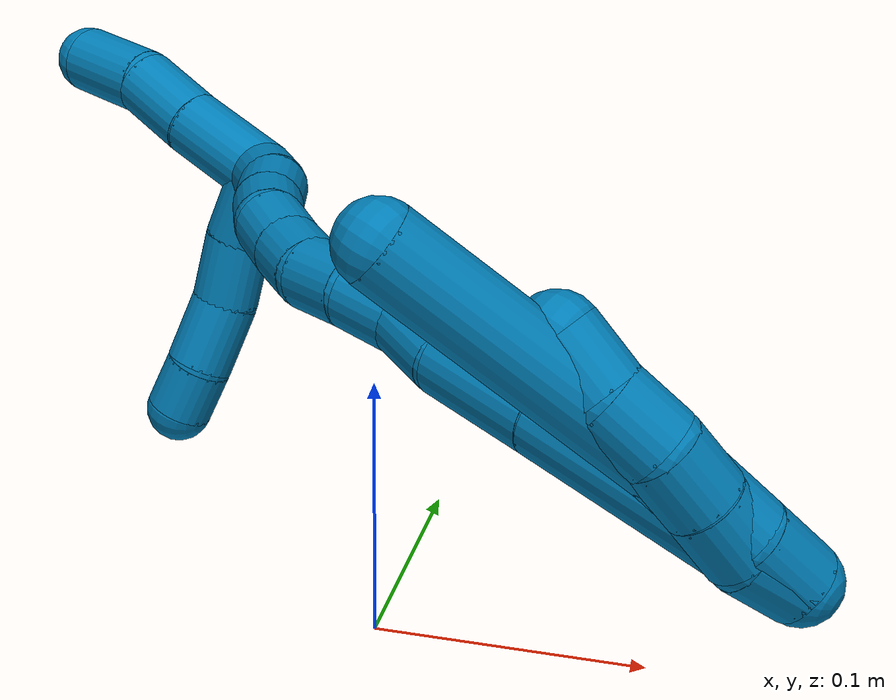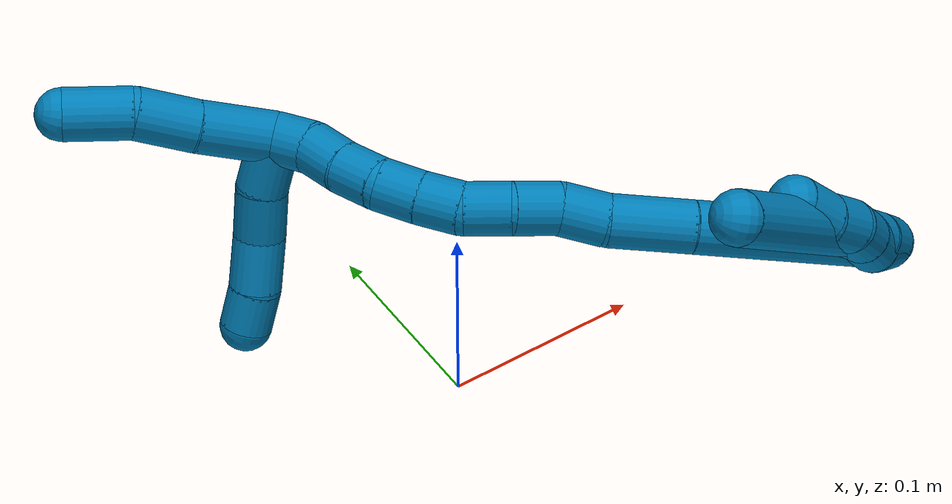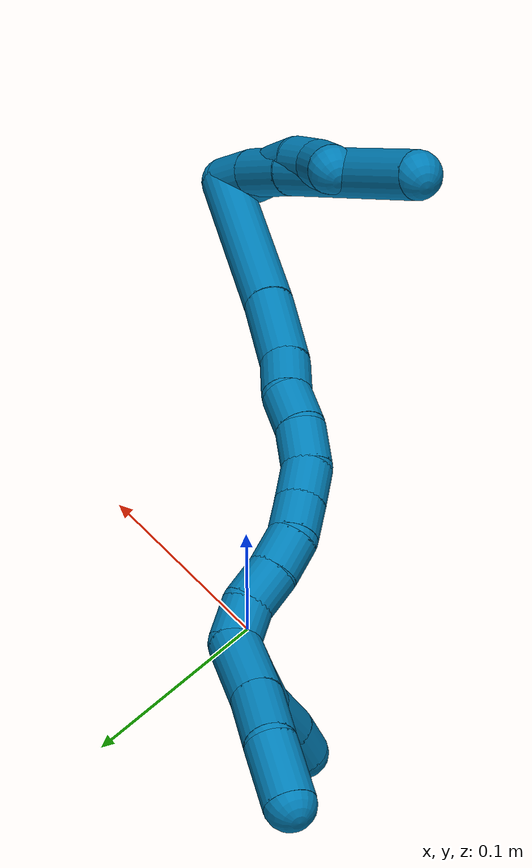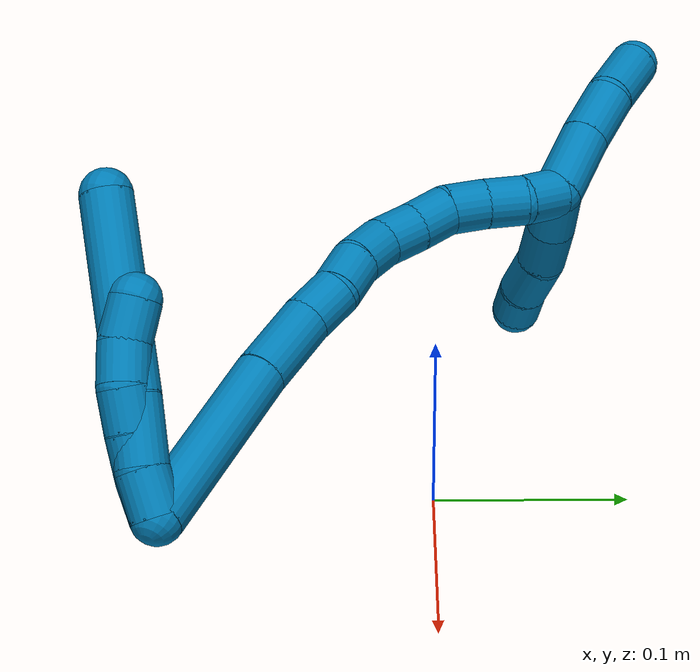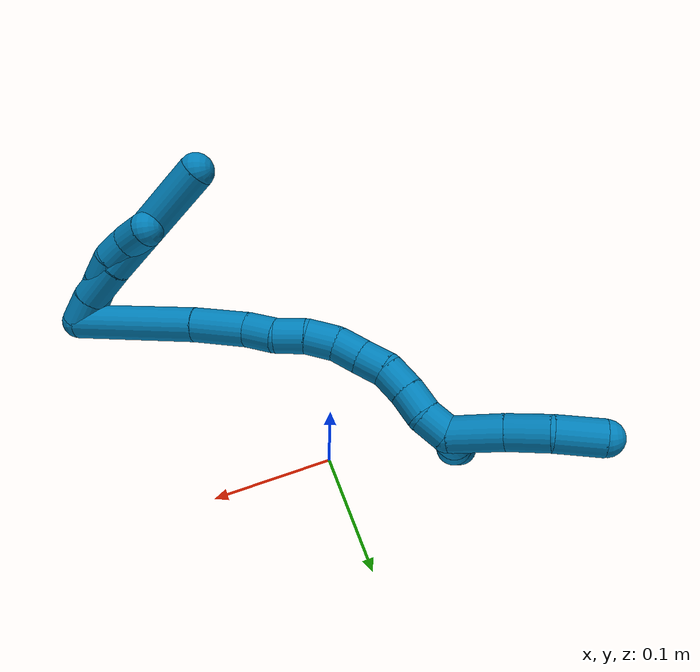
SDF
<sdf version="1.7">
 <world name="default">
  <model name="9">
   <static>0</static>
   <link name="9">
    <collision name="collision-cylinder-e_1_2_8">
     <pose>0.006383 -0.004992 0.007567 0.583192 0.613483 0.189569</pose>
     <geometry><cylinder><radius>0.0125</radius><length>0.022175</length></cylinder></geometry>
     <surface>
      <friction><ode><mu>1.16</mu><mu2>1.16</mu2><slip1>0</slip1><slip2>0</slip2></ode></friction>
      <contact><ode><kp>1e+06</kp><kd>1</kd><max_vel>0</max_vel><min_depth>0.001</min_depth></ode></contact>
     </surface>
    </collision>
    <visual name="visual-cylinder-e_1_2_8">
     <pose>0.006383 -0.004992 0.007567 0.583192 0.613483 0.189569</pose>
     <geometry><cylinder><radius>0.0125</radius><length>0.022175</length></cylinder></geometry>
     <material><ambient>0 0.490196 0.709804 1</ambient></material>
    </visual>
    <collision name="collision-cylinder-e_2_8_9">
     <pose>0.02064 -0.015294 0.028456 0.37921 0.5021 0.098356</pose>
     <geometry><cylinder><radius>0.0125</radius><length>0.032719</length></cylinder></geometry>
     <surface>
      <friction><ode><mu>1.16</mu><mu2>1.16</mu2><slip1>0</slip1><slip2>0</slip2></ode></friction>
      <contact><ode><kp>1e+06</kp><kd>1</kd><max_vel>0</max_vel><min_depth>0.001</min_depth></ode></contact>
     </surface>
    </collision>
    <visual name="visual-cylinder-e_2_8_9">
     <pose>0.02064 -0.015294 0.028456 0.37921 0.5021 0.098356</pose>
     <geometry><cylinder><radius>0.0125</radius><length>0.032719</length></cylinder></geometry>
     <material><ambient>0 0.490196 0.709804 1</ambient></material>
    </visual>
    <collision name="collision-cylinder-e_3_9_6">
     <pose>0.048416 -0.038534 0.081067 0.428161 0.431827 0.095299</pose>
     <geometry><cylinder><radius>0.0125</radius><length>0.095106</length></cylinder></geometry>
     <surface>
      <friction><ode><mu>1.16</mu><mu2>1.16</mu2><slip1>0</slip1><slip2>0</slip2></ode></friction>
      <contact><ode><kp>1e+06</kp><kd>1</kd><max_vel>0</max_vel><min_depth>0.001</min_depth></ode></contact>
     </surface>
    </collision>
    <visual name="visual-cylinder-e_3_9_6">
     <pose>0.048416 -0.038534 0.081067 0.428161 0.431827 0.095299</pose>
     <geometry><cylinder><radius>0.0125</radius><length>0.095106</length></cylinder></geometry>
     <material><ambient>0 0.490196 0.709804 1</ambient></material>
    </visual>
    <collision name="collision-cylinder-e_1_2_10">
     <pose>0.004242 -0.005418 0.007257 0.641294 0.438038 0.147579</pose>
     <geometry><cylinder><radius>0.0125</radius><length>0.02</length></cylinder></geometry>
     <surface>
      <friction><ode><mu>1.16</mu><mu2>1.16</mu2><slip1>0</slip1><slip2>0</slip2></ode></friction>
      <contact><ode><kp>1e+06</kp><kd>1</kd><max_vel>0</max_vel><min_depth>0.001</min_depth></ode></contact>
     </surface>
    </collision>
    <visual name="visual-cylinder-e_1_2_10">
     <pose>0.004242 -0.005418 0.007257 0.641294 0.438038 0.147579</pose>
     <geometry><cylinder><radius>0.0125</radius><length>0.02</length></cylinder></geometry>
     <material><ambient>0 0.490196 0.709804 1</ambient></material>
    </visual>
    <collision name="collision-cylinder-e_2_10_11">
     <pose>0.015087 -0.01426 0.021196 0.473594 0.72138 0.181551</pose>
     <geometry><cylinder><radius>0.0125</radius><length>0.02</length></cylinder></geometry>
     <surface>
      <friction><ode><mu>1.16</mu><mu2>1.16</mu2><slip1>0</slip1><slip2>0</slip2></ode></friction>
      <contact><ode><kp>1e+06</kp><kd>1</kd><max_vel>0</max_vel><min_depth>0.001</min_depth></ode></contact>
     </surface>
    </collision>
    <visual name="visual-cylinder-e_2_10_11">
     <pose>0.015087 -0.01426 0.021196 0.473594 0.72138 0.181551</pose>
     <geometry><cylinder><radius>0.0125</radius><length>0.02</length></cylinder></geometry>
     <material><ambient>0 0.490196 0.709804 1</ambient></material>
    </visual>
    <collision name="collision-cylinder-e_3_11_12">
     <pose>0.028 -0.020844 0.034965 0.419364 0.682635 0.150902</pose>
     <geometry><cylinder><radius>0.0125</radius><length>0.02</length></cylinder></geometry>
     <surface>
      <friction><ode><mu>1.16</mu><mu2>1.16</mu2><slip1>0</slip1><slip2>0</slip2></ode></friction>
      <contact><ode><kp>1e+06</kp><kd>1</kd><max_vel>0</max_vel><min_depth>0.001</min_depth></ode></contact>
     </surface>
    </collision>
    <visual name="visual-cylinder-e_3_11_12">
     <pose>0.028 -0.020844 0.034965 0.419364 0.682635 0.150902</pose>
     <geometry><cylinder><radius>0.0125</radius><length>0.02</length></cylinder></geometry>
     <material><ambient>0 0.490196 0.709804 1</ambient></material>
    </visual>
    <collision name="collision-cylinder-e_4_12_13">
     <pose>0.038381 -0.026382 0.05087 0.263479 0.419429 0.056392</pose>
     <geometry><cylinder><radius>0.0125</radius><length>0.02</length></cylinder></geometry>
     <surface>
      <friction><ode><mu>1.16</mu><mu2>1.16</mu2><slip1>0</slip1><slip2>0</slip2></ode></friction>
      <contact><ode><kp>1e+06</kp><kd>1</kd><max_vel>0</max_vel><min_depth>0.001</min_depth></ode></contact>
     </surface>
    </collision>
    <visual name="visual-cylinder-e_4_12_13">
     <pose>0.038381 -0.026382 0.05087 0.263479 0.419429 0.056392</pose>
     <geometry><cylinder><radius>0.0125</radius><length>0.02</length></cylinder></geometry>
     <material><ambient>0 0.490196 0.709804 1</ambient></material>
    </visual>
    <collision name="collision-cylinder-e_5_13_5">
     <pose>0.046755 -0.028673 0.068715 -0.009746 0.444706 -0.002204</pose>
     <geometry><cylinder><radius>0.0125</radius><length>0.02</length></cylinder></geometry>
     <surface>
      <friction><ode><mu>1.16</mu><mu2>1.16</mu2><slip1>0</slip1><slip2>0</slip2></ode></friction>
      <contact><ode><kp>1e+06</kp><kd>1</kd><max_vel>0</max_vel><min_depth>0.001</min_depth></ode></contact>
     </surface>
    </collision>
    <visual name="visual-cylinder-e_5_13_5">
     <pose>0.046755 -0.028673 0.068715 -0.009746 0.444706 -0.002204</pose>
     <geometry><cylinder><radius>0.0125</radius><length>0.02</length></cylinder></geometry>
     <material><ambient>0 0.490196 0.709804 1</ambient></material>
    </visual>
    <collision name="collision-cylinder-e_1_2_14">
     <pose>-0.00608 0.005064 0.045615 -0.110557 -0.131715 0.007299</pose>
     <geometry><cylinder><radius>0.0125</radius><length>0.092591</length></cylinder></geometry>
     <surface>
      <friction><ode><mu>1.16</mu><mu2>1.16</mu2><slip1>0</slip1><slip2>0</slip2></ode></friction>
      <contact><ode><kp>1e+06</kp><kd>1</kd><max_vel>0</max_vel><min_depth>0.001</min_depth></ode></contact>
     </surface>
    </collision>
    <visual name="visual-cylinder-e_1_2_14">
     <pose>-0.00608 0.005064 0.045615 -0.110557 -0.131715 0.007299</pose>
     <geometry><cylinder><radius>0.0125</radius><length>0.092591</length></cylinder></geometry>
     <material><ambient>0 0.490196 0.709804 1</ambient></material>
    </visual>
    <collision name="collision-cylinder-e_2_14_15">
     <pose>-0.015711 0.013105 0.110682 -0.151895 -0.178512 0.01362</pose>
     <geometry><cylinder><radius>0.0125</radius><length>0.039994</length></cylinder></geometry>
     <surface>
      <friction><ode><mu>1.16</mu><mu2>1.16</mu2><slip1>0</slip1><slip2>0</slip2></ode></friction>
      <contact><ode><kp>1e+06</kp><kd>1</kd><max_vel>0</max_vel><min_depth>0.001</min_depth></ode></contact>
     </surface>
    </collision>
    <visual name="visual-cylinder-e_2_14_15">
     <pose>-0.015711 0.013105 0.110682 -0.151895 -0.178512 0.01362</pose>
     <geometry><cylinder><radius>0.0125</radius><length>0.039994</length></cylinder></geometry>
     <material><ambient>0 0.490196 0.709804 1</ambient></material>
    </visual>
    <collision name="collision-cylinder-e_3_15_16">
     <pose>-0.020461 0.019604 0.140619 -0.323979 -0.108028 0.017671</pose>
     <geometry><cylinder><radius>0.0125</radius><length>0.02225</length></cylinder></geometry>
     <surface>
      <friction><ode><mu>1.16</mu><mu2>1.16</mu2><slip1>0</slip1><slip2>0</slip2></ode></friction>
      <contact><ode><kp>1e+06</kp><kd>1</kd><max_vel>0</max_vel><min_depth>0.001</min_depth></ode></contact>
     </surface>
    </collision>
    <visual name="visual-cylinder-e_3_15_16">
     <pose>-0.020461 0.019604 0.140619 -0.323979 -0.108028 0.017671</pose>
     <geometry><cylinder><radius>0.0125</radius><length>0.02225</length></cylinder></geometry>
     <material><ambient>0 0.490196 0.709804 1</ambient></material>
    </visual>
    <collision name="collision-cylinder-e_4_16_17">
     <pose>-0.023645 0.023701 0.161799 -0.05385 -0.183192 0.004947</pose>
     <geometry><cylinder><radius>0.0125</radius><length>0.021787</length></cylinder></geometry>
     <surface>
      <friction><ode><mu>1.16</mu><mu2>1.16</mu2><slip1>0</slip1><slip2>0</slip2></ode></friction>
      <contact><ode><kp>1e+06</kp><kd>1</kd><max_vel>0</max_vel><min_depth>0.001</min_depth></ode></contact>
     </surface>
    </collision>
    <visual name="visual-cylinder-e_4_16_17">
     <pose>-0.023645 0.023701 0.161799 -0.05385 -0.183192 0.004947</pose>
     <geometry><cylinder><radius>0.0125</radius><length>0.021787</length></cylinder></geometry>
     <material><ambient>0 0.490196 0.709804 1</ambient></material>
    </visual>
    <collision name="collision-cylinder-e_5_17_18">
     <pose>-0.029568 0.02644 0.18255 -0.211799 -0.365708 0.039308</pose>
     <geometry><cylinder><radius>0.0125</radius><length>0.022026</length></cylinder></geometry>
     <surface>
      <friction><ode><mu>1.16</mu><mu2>1.16</mu2><slip1>0</slip1><slip2>0</slip2></ode></friction>
      <contact><ode><kp>1e+06</kp><kd>1</kd><max_vel>0</max_vel><min_depth>0.001</min_depth></ode></contact>
     </surface>
    </collision>
    <visual name="visual-cylinder-e_5_17_18">
     <pose>-0.029568 0.02644 0.18255 -0.211799 -0.365708 0.039308</pose>
     <geometry><cylinder><radius>0.0125</radius><length>0.022026</length></cylinder></geometry>
     <material><ambient>0 0.490196 0.709804 1</ambient></material>
    </visual>
    <collision name="collision-cylinder-e_6_18_19">
     <pose>-0.036487 0.033612 0.200995 -0.538328 -0.296052 0.082224</pose>
     <geometry><cylinder><radius>0.0125</radius><length>0.020434</length></cylinder></geometry>
     <surface>
      <friction><ode><mu>1.16</mu><mu2>1.16</mu2><slip1>0</slip1><slip2>0</slip2></ode></friction>
      <contact><ode><kp>1e+06</kp><kd>1</kd><max_vel>0</max_vel><min_depth>0.001</min_depth></ode></contact>
     </surface>
    </collision>
    <visual name="visual-cylinder-e_6_18_19">
     <pose>-0.036487 0.033612 0.200995 -0.538328 -0.296052 0.082224</pose>
     <geometry><cylinder><radius>0.0125</radius><length>0.020434</length></cylinder></geometry>
     <material><ambient>0 0.490196 0.709804 1</ambient></material>
    </visual>
    <collision name="collision-cylinder-e_7_19_20">
     <pose>-0.041637 0.043722 0.217753 -0.547332 -0.217876 0.061383</pose>
     <geometry><cylinder><radius>0.0125</radius><length>0.020072</length></cylinder></geometry>
     <surface>
      <friction><ode><mu>1.16</mu><mu2>1.16</mu2><slip1>0</slip1><slip2>0</slip2></ode></friction>
      <contact><ode><kp>1e+06</kp><kd>1</kd><max_vel>0</max_vel><min_depth>0.001</min_depth></ode></contact>
     </surface>
    </collision>
    <visual name="visual-cylinder-e_7_19_20">
     <pose>-0.041637 0.043722 0.217753 -0.547332 -0.217876 0.061383</pose>
     <geometry><cylinder><radius>0.0125</radius><length>0.020072</length></cylinder></geometry>
     <material><ambient>0 0.490196 0.709804 1</ambient></material>
    </visual>
    <collision name="collision-cylinder-e_8_20_21">
     <pose>-0.047234 0.056129 0.232296 -0.869176 -0.343957 0.160905</pose>
     <geometry><cylinder><radius>0.0125</radius><length>0.020327</length></cylinder></geometry>
     <surface>
      <friction><ode><mu>1.16</mu><mu2>1.16</mu2><slip1>0</slip1><slip2>0</slip2></ode></friction>
      <contact><ode><kp>1e+06</kp><kd>1</kd><max_vel>0</max_vel><min_depth>0.001</min_depth></ode></contact>
     </surface>
    </collision>
    <visual name="visual-cylinder-e_8_20_21">
     <pose>-0.047234 0.056129 0.232296 -0.869176 -0.343957 0.160905</pose>
     <geometry><cylinder><radius>0.0125</radius><length>0.020327</length></cylinder></geometry>
     <material><ambient>0 0.490196 0.709804 1</ambient></material>
    </visual>
    <collision name="collision-cylinder-e_9_21_22">
     <pose>-0.053725 0.07167 0.243744 -1.00119 -0.303658 0.167022</pose>
     <geometry><cylinder><radius>0.0125</radius><length>0.02049</length></cylinder></geometry>
     <surface>
      <friction><ode><mu>1.16</mu><mu2>1.16</mu2><slip1>0</slip1><slip2>0</slip2></ode></friction>
      <contact><ode><kp>1e+06</kp><kd>1</kd><max_vel>0</max_vel><min_depth>0.001</min_depth></ode></contact>
     </surface>
    </collision>
    <visual name="visual-cylinder-e_9_21_22">
     <pose>-0.053725 0.07167 0.243744 -1.00119 -0.303658 0.167022</pose>
     <geometry><cylinder><radius>0.0125</radius><length>0.02049</length></cylinder></geometry>
     <material><ambient>0 0.490196 0.709804 1</ambient></material>
    </visual>
    <collision name="collision-cylinder-e_10_22_1">
     <pose>-0.060855 0.085827 0.255992 -0.704133 -0.418179 0.155591</pose>
     <geometry><cylinder><radius>0.0125</radius><length>0.020029</length></cylinder></geometry>
     <surface>
      <friction><ode><mu>1.16</mu><mu2>1.16</mu2><slip1>0</slip1><slip2>0</slip2></ode></friction>
      <contact><ode><kp>1e+06</kp><kd>1</kd><max_vel>0</max_vel><min_depth>0.001</min_depth></ode></contact>
     </surface>
    </collision>
    <visual name="visual-cylinder-e_10_22_1">
     <pose>-0.060855 0.085827 0.255992 -0.704133 -0.418179 0.155591</pose>
     <geometry><cylinder><radius>0.0125</radius><length>0.020029</length></cylinder></geometry>
     <material><ambient>0 0.490196 0.709804 1</ambient></material>
    </visual>
    <collision name="collision-cylinder-e_1_1_23">
     <pose>-0.064933 0.093052 0.281789 -0.069008 -0.000609 2.1e-05</pose>
     <geometry><cylinder><radius>0.0125</radius><length>0.037734</length></cylinder></geometry>
     <surface>
      <friction><ode><mu>1.16</mu><mu2>1.16</mu2><slip1>0</slip1><slip2>0</slip2></ode></friction>
      <contact><ode><kp>1e+06</kp><kd>1</kd><max_vel>0</max_vel><min_depth>0.001</min_depth></ode></contact>
     </surface>
    </collision>
    <visual name="visual-cylinder-e_1_1_23">
     <pose>-0.064933 0.093052 0.281789 -0.069008 -0.000609 2.1e-05</pose>
     <geometry><cylinder><radius>0.0125</radius><length>0.037734</length></cylinder></geometry>
     <material><ambient>0 0.490196 0.709804 1</ambient></material>
    </visual>
    <collision name="collision-cylinder-e_2_23_24">
     <pose>-0.064811 0.096552 0.315259 -0.148965 0.009036 -0.000674</pose>
     <geometry><cylinder><radius>0.0125</radius><length>0.029626</length></cylinder></geometry>
     <surface>
      <friction><ode><mu>1.16</mu><mu2>1.16</mu2><slip1>0</slip1><slip2>0</slip2></ode></friction>
      <contact><ode><kp>1e+06</kp><kd>1</kd><max_vel>0</max_vel><min_depth>0.001</min_depth></ode></contact>
     </surface>
    </collision>
    <visual name="visual-cylinder-e_2_23_24">
     <pose>-0.064811 0.096552 0.315259 -0.148965 0.009036 -0.000674</pose>
     <geometry><cylinder><radius>0.0125</radius><length>0.029626</length></cylinder></geometry>
     <material><ambient>0 0.490196 0.709804 1</ambient></material>
    </visual>
    <collision name="collision-cylinder-e_3_24_4">
     <pose>-0.068756 0.10004 0.345657 -0.081748 -0.252639 0.010387</pose>
     <geometry><cylinder><radius>0.0125</radius><length>0.03264</length></cylinder></geometry>
     <surface>
      <friction><ode><mu>1.16</mu><mu2>1.16</mu2><slip1>0</slip1><slip2>0</slip2></ode></friction>
      <contact><ode><kp>1e+06</kp><kd>1</kd><max_vel>0</max_vel><min_depth>0.001</min_depth></ode></contact>
     </surface>
    </collision>
    <visual name="visual-cylinder-e_3_24_4">
     <pose>-0.068756 0.10004 0.345657 -0.081748 -0.252639 0.010387</pose>
     <geometry><cylinder><radius>0.0125</radius><length>0.03264</length></cylinder></geometry>
     <material><ambient>0 0.490196 0.709804 1</ambient></material>
    </visual>
    <collision name="collision-cylinder-e_1_1_25">
     <pose>-0.077994 0.087846 0.262874 1.59449 -1.28039 -1.30316</pose>
     <geometry><cylinder><radius>0.0125</radius><length>0.027286</length></cylinder></geometry>
     <surface>
      <friction><ode><mu>1.16</mu><mu2>1.16</mu2><slip1>0</slip1><slip2>0</slip2></ode></friction>
      <contact><ode><kp>1e+06</kp><kd>1</kd><max_vel>0</max_vel><min_depth>0.001</min_depth></ode></contact>
     </surface>
    </collision>
    <visual name="visual-cylinder-e_1_1_25">
     <pose>-0.077994 0.087846 0.262874 1.59449 -1.28039 -1.30316</pose>
     <geometry><cylinder><radius>0.0125</radius><length>0.027286</length></cylinder></geometry>
     <material><ambient>0 0.490196 0.709804 1</ambient></material>
    </visual>
    <collision name="collision-cylinder-e_2_25_26">
     <pose>-0.103004 0.079918 0.260409 2.1037 -1.19795 -1.74815</pose>
     <geometry><cylinder><radius>0.0125</radius><length>0.025638</length></cylinder></geometry>
     <surface>
      <friction><ode><mu>1.16</mu><mu2>1.16</mu2><slip1>0</slip1><slip2>0</slip2></ode></friction>
      <contact><ode><kp>1e+06</kp><kd>1</kd><max_vel>0</max_vel><min_depth>0.001</min_depth></ode></contact>
     </surface>
    </collision>
    <visual name="visual-cylinder-e_2_25_26">
     <pose>-0.103004 0.079918 0.260409 2.1037 -1.19795 -1.74815</pose>
     <geometry><cylinder><radius>0.0125</radius><length>0.025638</length></cylinder></geometry>
     <material><ambient>0 0.490196 0.709804 1</ambient></material>
    </visual>
    <collision name="collision-cylinder-e_3_26_27">
     <pose>-0.126591 0.069387 0.256679 1.77646 -1.05214 -1.24049</pose>
     <geometry><cylinder><radius>0.0125</radius><length>0.026827</length></cylinder></geometry>
     <surface>
      <friction><ode><mu>1.16</mu><mu2>1.16</mu2><slip1>0</slip1><slip2>0</slip2></ode></friction>
      <contact><ode><kp>1e+06</kp><kd>1</kd><max_vel>0</max_vel><min_depth>0.001</min_depth></ode></contact>
     </surface>
    </collision>
    <visual name="visual-cylinder-e_3_26_27">
     <pose>-0.126591 0.069387 0.256679 1.77646 -1.05214 -1.24049</pose>
     <geometry><cylinder><radius>0.0125</radius><length>0.026827</length></cylinder></geometry>
     <material><ambient>0 0.490196 0.709804 1</ambient></material>
    </visual>
    <collision name="collision-cylinder-e_4_27_3">
     <pose>-0.147619 0.059064 0.255377 1.55614 -1.18451 -1.17098</pose>
     <geometry><cylinder><radius>0.0125</radius><length>0.020249</length></cylinder></geometry>
     <surface>
      <friction><ode><mu>1.16</mu><mu2>1.16</mu2><slip1>0</slip1><slip2>0</slip2></ode></friction>
      <contact><ode><kp>1e+06</kp><kd>1</kd><max_vel>0</max_vel><min_depth>0.001</min_depth></ode></contact>
     </surface>
    </collision>
    <visual name="visual-cylinder-e_4_27_3">
     <pose>-0.147619 0.059064 0.255377 1.55614 -1.18451 -1.17098</pose>
     <geometry><cylinder><radius>0.0125</radius><length>0.020249</length></cylinder></geometry>
     <material><ambient>0 0.490196 0.709804 1</ambient></material>
    </visual>
    <collision name="collision-sphere-3">
     <pose>-0.156998 0.05525 0.255433 0 -0 0</pose>
     <geometry><sphere><radius>0.0125</radius></sphere></geometry>
     <surface>
      <friction><ode><mu>1.16</mu><mu2>1.16</mu2><slip1>0</slip1><slip2>0</slip2></ode></friction>
      <contact><ode><kp>1e+06</kp><kd>1</kd><max_vel>0</max_vel><min_depth>0.001</min_depth></ode></contact>
     </surface>
    </collision>
    <visual name="visual-sphere-3">
     <pose>-0.156998 0.05525 0.255433 0 -0 0</pose>
     <geometry><sphere><radius>0.0125</radius></sphere></geometry>
     <material><ambient>0 0.490196 0.709804 1</ambient></material>
    </visual>
    <collision name="collision-sphere-27">
     <pose>-0.138241 0.062878 0.255321 0 -0 0</pose>
     <geometry><sphere><radius>0.0125</radius></sphere></geometry>
     <surface>
      <friction><ode><mu>1.16</mu><mu2>1.16</mu2><slip1>0</slip1><slip2>0</slip2></ode></friction>
      <contact><ode><kp>1e+06</kp><kd>1</kd><max_vel>0</max_vel><min_depth>0.001</min_depth></ode></contact>
     </surface>
    </collision>
    <visual name="visual-sphere-27">
     <pose>-0.138241 0.062878 0.255321 0 -0 0</pose>
     <geometry><sphere><radius>0.0125</radius></sphere></geometry>
     <material><ambient>0 0.490196 0.709804 1</ambient></material>
    </visual>
    <collision name="collision-sphere-26">
     <pose>-0.114942 0.075896 0.258037 0 -0 0</pose>
     <geometry><sphere><radius>0.0125</radius></sphere></geometry>
     <surface>
      <friction><ode><mu>1.16</mu><mu2>1.16</mu2><slip1>0</slip1><slip2>0</slip2></ode></friction>
      <contact><ode><kp>1e+06</kp><kd>1</kd><max_vel>0</max_vel><min_depth>0.001</min_depth></ode></contact>
     </surface>
    </collision>
    <visual name="visual-sphere-26">
     <pose>-0.114942 0.075896 0.258037 0 -0 0</pose>
     <geometry><sphere><radius>0.0125</radius></sphere></geometry>
     <material><ambient>0 0.490196 0.709804 1</ambient></material>
    </visual>
    <collision name="collision-sphere-25">
     <pose>-0.091065 0.08394 0.262782 0 -0 0</pose>
     <geometry><sphere><radius>0.0125</radius></sphere></geometry>
     <surface>
      <friction><ode><mu>1.16</mu><mu2>1.16</mu2><slip1>0</slip1><slip2>0</slip2></ode></friction>
      <contact><ode><kp>1e+06</kp><kd>1</kd><max_vel>0</max_vel><min_depth>0.001</min_depth></ode></contact>
     </surface>
    </collision>
    <visual name="visual-sphere-25">
     <pose>-0.091065 0.08394 0.262782 0 -0 0</pose>
     <geometry><sphere><radius>0.0125</radius></sphere></geometry>
     <material><ambient>0 0.490196 0.709804 1</ambient></material>
    </visual>
    <collision name="collision-sphere-4">
     <pose>-0.072836 0.101331 0.361406 0 -0 0</pose>
     <geometry><sphere><radius>0.0125</radius></sphere></geometry>
     <surface>
      <friction><ode><mu>1.16</mu><mu2>1.16</mu2><slip1>0</slip1><slip2>0</slip2></ode></friction>
      <contact><ode><kp>1e+06</kp><kd>1</kd><max_vel>0</max_vel><min_depth>0.001</min_depth></ode></contact>
     </surface>
    </collision>
    <visual name="visual-sphere-4">
     <pose>-0.072836 0.101331 0.361406 0 -0 0</pose>
     <geometry><sphere><radius>0.0125</radius></sphere></geometry>
     <material><ambient>0 0.490196 0.709804 1</ambient></material>
    </visual>
    <collision name="collision-sphere-24">
     <pose>-0.064677 0.09875 0.329907 0 -0 0</pose>
     <geometry><sphere><radius>0.0125</radius></sphere></geometry>
     <surface>
      <friction><ode><mu>1.16</mu><mu2>1.16</mu2><slip1>0</slip1><slip2>0</slip2></ode></friction>
      <contact><ode><kp>1e+06</kp><kd>1</kd><max_vel>0</max_vel><min_depth>0.001</min_depth></ode></contact>
     </surface>
    </collision>
    <visual name="visual-sphere-24">
     <pose>-0.064677 0.09875 0.329907 0 -0 0</pose>
     <geometry><sphere><radius>0.0125</radius></sphere></geometry>
     <material><ambient>0 0.490196 0.709804 1</ambient></material>
    </visual>
    <collision name="collision-sphere-23">
     <pose>-0.064945 0.094353 0.300611 0 -0 0</pose>
     <geometry><sphere><radius>0.0125</radius></sphere></geometry>
     <surface>
      <friction><ode><mu>1.16</mu><mu2>1.16</mu2><slip1>0</slip1><slip2>0</slip2></ode></friction>
      <contact><ode><kp>1e+06</kp><kd>1</kd><max_vel>0</max_vel><min_depth>0.001</min_depth></ode></contact>
     </surface>
    </collision>
    <visual name="visual-sphere-23">
     <pose>-0.064945 0.094353 0.300611 0 -0 0</pose>
     <geometry><sphere><radius>0.0125</radius></sphere></geometry>
     <material><ambient>0 0.490196 0.709804 1</ambient></material>
    </visual>
    <collision name="collision-sphere-1">
     <pose>-0.064922 0.091752 0.262967 0 -0 0</pose>
     <geometry><sphere><radius>0.0125</radius></sphere></geometry>
     <surface>
      <friction><ode><mu>1.16</mu><mu2>1.16</mu2><slip1>0</slip1><slip2>0</slip2></ode></friction>
      <contact><ode><kp>1e+06</kp><kd>1</kd><max_vel>0</max_vel><min_depth>0.001</min_depth></ode></contact>
     </surface>
    </collision>
    <visual name="visual-sphere-1">
     <pose>-0.064922 0.091752 0.262967 0 -0 0</pose>
     <geometry><sphere><radius>0.0125</radius></sphere></geometry>
     <material><ambient>0 0.490196 0.709804 1</ambient></material>
    </visual>
    <collision name="collision-sphere-22">
     <pose>-0.056788 0.079902 0.249016 0 -0 0</pose>
     <geometry><sphere><radius>0.0125</radius></sphere></geometry>
     <surface>
      <friction><ode><mu>1.16</mu><mu2>1.16</mu2><slip1>0</slip1><slip2>0</slip2></ode></friction>
      <contact><ode><kp>1e+06</kp><kd>1</kd><max_vel>0</max_vel><min_depth>0.001</min_depth></ode></contact>
     </surface>
    </collision>
    <visual name="visual-sphere-22">
     <pose>-0.056788 0.079902 0.249016 0 -0 0</pose>
     <geometry><sphere><radius>0.0125</radius></sphere></geometry>
     <material><ambient>0 0.490196 0.709804 1</ambient></material>
    </visual>
    <collision name="collision-sphere-21">
     <pose>-0.050661 0.063437 0.238472 0 -0 0</pose>
     <geometry><sphere><radius>0.0125</radius></sphere></geometry>
     <surface>
      <friction><ode><mu>1.16</mu><mu2>1.16</mu2><slip1>0</slip1><slip2>0</slip2></ode></friction>
      <contact><ode><kp>1e+06</kp><kd>1</kd><max_vel>0</max_vel><min_depth>0.001</min_depth></ode></contact>
     </surface>
    </collision>
    <visual name="visual-sphere-21">
     <pose>-0.050661 0.063437 0.238472 0 -0 0</pose>
     <geometry><sphere><radius>0.0125</radius></sphere></geometry>
     <material><ambient>0 0.490196 0.709804 1</ambient></material>
    </visual>
    <collision name="collision-sphere-11">
     <pose>0.021692 -0.017685 0.027878 0 -0 0</pose>
     <geometry><sphere><radius>0.0125</radius></sphere></geometry>
     <surface>
      <friction><ode><mu>1.16</mu><mu2>1.16</mu2><slip1>0</slip1><slip2>0</slip2></ode></friction>
      <contact><ode><kp>1e+06</kp><kd>1</kd><max_vel>0</max_vel><min_depth>0.001</min_depth></ode></contact>
     </surface>
    </collision>
    <visual name="visual-sphere-11">
     <pose>0.021692 -0.017685 0.027878 0 -0 0</pose>
     <geometry><sphere><radius>0.0125</radius></sphere></geometry>
     <material><ambient>0 0.490196 0.709804 1</ambient></material>
    </visual>
    <collision name="collision-sphere-10">
     <pose>0.008483 -0.010835 0.014513 0 -0 0</pose>
     <geometry><sphere><radius>0.0125</radius></sphere></geometry>
     <surface>
      <friction><ode><mu>1.16</mu><mu2>1.16</mu2><slip1>0</slip1><slip2>0</slip2></ode></friction>
      <contact><ode><kp>1e+06</kp><kd>1</kd><max_vel>0</max_vel><min_depth>0.001</min_depth></ode></contact>
     </surface>
    </collision>
    <visual name="visual-sphere-10">
     <pose>0.008483 -0.010835 0.014513 0 -0 0</pose>
     <geometry><sphere><radius>0.0125</radius></sphere></geometry>
     <material><ambient>0 0.490196 0.709804 1</ambient></material>
    </visual>
    <collision name="collision-sphere-6">
     <pose>0.068318 -0.056465 0.120356 0 -0 0</pose>
     <geometry><sphere><radius>0.0125</radius></sphere></geometry>
     <surface>
      <friction><ode><mu>1.16</mu><mu2>1.16</mu2><slip1>0</slip1><slip2>0</slip2></ode></friction>
      <contact><ode><kp>1e+06</kp><kd>1</kd><max_vel>0</max_vel><min_depth>0.001</min_depth></ode></contact>
     </surface>
    </collision>
    <visual name="visual-sphere-6">
     <pose>0.068318 -0.056465 0.120356 0 -0 0</pose>
     <geometry><sphere><radius>0.0125</radius></sphere></geometry>
     <material><ambient>0 0.490196 0.709804 1</ambient></material>
    </visual>
    <collision name="collision-sphere-9">
     <pose>0.028513 -0.020602 0.041778 0 -0 0</pose>
     <geometry><sphere><radius>0.0125</radius></sphere></geometry>
     <surface>
      <friction><ode><mu>1.16</mu><mu2>1.16</mu2><slip1>0</slip1><slip2>0</slip2></ode></friction>
      <contact><ode><kp>1e+06</kp><kd>1</kd><max_vel>0</max_vel><min_depth>0.001</min_depth></ode></contact>
     </surface>
    </collision>
    <visual name="visual-sphere-9">
     <pose>0.028513 -0.020602 0.041778 0 -0 0</pose>
     <geometry><sphere><radius>0.0125</radius></sphere></geometry>
     <material><ambient>0 0.490196 0.709804 1</ambient></material>
    </visual>
    <collision name="collision-sphere-2">
     <geometry><sphere><radius>0.0125</radius></sphere></geometry>
     <surface>
      <friction><ode><mu>1.16</mu><mu2>1.16</mu2><slip1>0</slip1><slip2>0</slip2></ode></friction>
      <contact><ode><kp>1e+06</kp><kd>1</kd><max_vel>0</max_vel><min_depth>0.001</min_depth></ode></contact>
     </surface>
    </collision>
    <visual name="visual-sphere-2">
     <geometry><sphere><radius>0.0125</radius></sphere></geometry>
     <material><ambient>0 0.490196 0.709804 1</ambient></material>
    </visual>
    <collision name="collision-sphere-19">
     <pose>-0.039468 0.038622 0.209385 0 -0 0</pose>
     <geometry><sphere><radius>0.0125</radius></sphere></geometry>
     <surface>
      <friction><ode><mu>1.16</mu><mu2>1.16</mu2><slip1>0</slip1><slip2>0</slip2></ode></friction>
      <contact><ode><kp>1e+06</kp><kd>1</kd><max_vel>0</max_vel><min_depth>0.001</min_depth></ode></contact>
     </surface>
    </collision>
    <visual name="visual-sphere-19">
     <pose>-0.039468 0.038622 0.209385 0 -0 0</pose>
     <geometry><sphere><radius>0.0125</radius></sphere></geometry>
     <material><ambient>0 0.490196 0.709804 1</ambient></material>
    </visual>
    <collision name="collision-sphere-8">
     <pose>0.012767 -0.009985 0.015135 0 -0 0</pose>
     <geometry><sphere><radius>0.0125</radius></sphere></geometry>
     <surface>
      <friction><ode><mu>1.16</mu><mu2>1.16</mu2><slip1>0</slip1><slip2>0</slip2></ode></friction>
      <contact><ode><kp>1e+06</kp><kd>1</kd><max_vel>0</max_vel><min_depth>0.001</min_depth></ode></contact>
     </surface>
    </collision>
    <visual name="visual-sphere-8">
     <pose>0.012767 -0.009985 0.015135 0 -0 0</pose>
     <geometry><sphere><radius>0.0125</radius></sphere></geometry>
     <material><ambient>0 0.490196 0.709804 1</ambient></material>
    </visual>
    <collision name="collision-sphere-12">
     <pose>0.034308 -0.024003 0.042052 0 -0 0</pose>
     <geometry><sphere><radius>0.0125</radius></sphere></geometry>
     <surface>
      <friction><ode><mu>1.16</mu><mu2>1.16</mu2><slip1>0</slip1><slip2>0</slip2></ode></friction>
      <contact><ode><kp>1e+06</kp><kd>1</kd><max_vel>0</max_vel><min_depth>0.001</min_depth></ode></contact>
     </surface>
    </collision>
    <visual name="visual-sphere-12">
     <pose>0.034308 -0.024003 0.042052 0 -0 0</pose>
     <geometry><sphere><radius>0.0125</radius></sphere></geometry>
     <material><ambient>0 0.490196 0.709804 1</ambient></material>
    </visual>
    <collision name="collision-sphere-13">
     <pose>0.042453 -0.028761 0.059688 0 -0 0</pose>
     <geometry><sphere><radius>0.0125</radius></sphere></geometry>
     <surface>
      <friction><ode><mu>1.16</mu><mu2>1.16</mu2><slip1>0</slip1><slip2>0</slip2></ode></friction>
      <contact><ode><kp>1e+06</kp><kd>1</kd><max_vel>0</max_vel><min_depth>0.001</min_depth></ode></contact>
     </surface>
    </collision>
    <visual name="visual-sphere-13">
     <pose>0.042453 -0.028761 0.059688 0 -0 0</pose>
     <geometry><sphere><radius>0.0125</radius></sphere></geometry>
     <material><ambient>0 0.490196 0.709804 1</ambient></material>
    </visual>
    <collision name="collision-sphere-5">
     <pose>0.051057 -0.028585 0.077742 0 -0 0</pose>
     <geometry><sphere><radius>0.0125</radius></sphere></geometry>
     <surface>
      <friction><ode><mu>1.16</mu><mu2>1.16</mu2><slip1>0</slip1><slip2>0</slip2></ode></friction>
      <contact><ode><kp>1e+06</kp><kd>1</kd><max_vel>0</max_vel><min_depth>0.001</min_depth></ode></contact>
     </surface>
    </collision>
    <visual name="visual-sphere-5">
     <pose>0.051057 -0.028585 0.077742 0 -0 0</pose>
     <geometry><sphere><radius>0.0125</radius></sphere></geometry>
     <material><ambient>0 0.490196 0.709804 1</ambient></material>
    </visual>
    <collision name="collision-sphere-14">
     <pose>-0.01216 0.010127 0.091229 0 -0 0</pose>
     <geometry><sphere><radius>0.0125</radius></sphere></geometry>
     <surface>
      <friction><ode><mu>1.16</mu><mu2>1.16</mu2><slip1>0</slip1><slip2>0</slip2></ode></friction>
      <contact><ode><kp>1e+06</kp><kd>1</kd><max_vel>0</max_vel><min_depth>0.001</min_depth></ode></contact>
     </surface>
    </collision>
    <visual name="visual-sphere-14">
     <pose>-0.01216 0.010127 0.091229 0 -0 0</pose>
     <geometry><sphere><radius>0.0125</radius></sphere></geometry>
     <material><ambient>0 0.490196 0.709804 1</ambient></material>
    </visual>
    <collision name="collision-sphere-15">
     <pose>-0.019262 0.016083 0.130134 0 -0 0</pose>
     <geometry><sphere><radius>0.0125</radius></sphere></geometry>
     <surface>
      <friction><ode><mu>1.16</mu><mu2>1.16</mu2><slip1>0</slip1><slip2>0</slip2></ode></friction>
      <contact><ode><kp>1e+06</kp><kd>1</kd><max_vel>0</max_vel><min_depth>0.001</min_depth></ode></contact>
     </surface>
    </collision>
    <visual name="visual-sphere-15">
     <pose>-0.019262 0.016083 0.130134 0 -0 0</pose>
     <geometry><sphere><radius>0.0125</radius></sphere></geometry>
     <material><ambient>0 0.490196 0.709804 1</ambient></material>
    </visual>
    <collision name="collision-sphere-16">
     <pose>-0.021661 0.023124 0.151104 0 -0 0</pose>
     <geometry><sphere><radius>0.0125</radius></sphere></geometry>
     <surface>
      <friction><ode><mu>1.16</mu><mu2>1.16</mu2><slip1>0</slip1><slip2>0</slip2></ode></friction>
      <contact><ode><kp>1e+06</kp><kd>1</kd><max_vel>0</max_vel><min_depth>0.001</min_depth></ode></contact>
     </surface>
    </collision>
    <visual name="visual-sphere-16">
     <pose>-0.021661 0.023124 0.151104 0 -0 0</pose>
     <geometry><sphere><radius>0.0125</radius></sphere></geometry>
     <material><ambient>0 0.490196 0.709804 1</ambient></material>
    </visual>
    <collision name="collision-sphere-17">
     <pose>-0.02563 0.024277 0.172495 0 -0 0</pose>
     <geometry><sphere><radius>0.0125</radius></sphere></geometry>
     <surface>
      <friction><ode><mu>1.16</mu><mu2>1.16</mu2><slip1>0</slip1><slip2>0</slip2></ode></friction>
      <contact><ode><kp>1e+06</kp><kd>1</kd><max_vel>0</max_vel><min_depth>0.001</min_depth></ode></contact>
     </surface>
    </collision>
    <visual name="visual-sphere-17">
     <pose>-0.02563 0.024277 0.172495 0 -0 0</pose>
     <geometry><sphere><radius>0.0125</radius></sphere></geometry>
     <material><ambient>0 0.490196 0.709804 1</ambient></material>
    </visual>
    <collision name="collision-sphere-18">
     <pose>-0.033507 0.028602 0.192605 0 -0 0</pose>
     <geometry><sphere><radius>0.0125</radius></sphere></geometry>
     <surface>
      <friction><ode><mu>1.16</mu><mu2>1.16</mu2><slip1>0</slip1><slip2>0</slip2></ode></friction>
      <contact><ode><kp>1e+06</kp><kd>1</kd><max_vel>0</max_vel><min_depth>0.001</min_depth></ode></contact>
     </surface>
    </collision>
    <visual name="visual-sphere-18">
     <pose>-0.033507 0.028602 0.192605 0 -0 0</pose>
     <geometry><sphere><radius>0.0125</radius></sphere></geometry>
     <material><ambient>0 0.490196 0.709804 1</ambient></material>
    </visual>
    <collision name="collision-sphere-20">
     <pose>-0.043807 0.048821 0.22612 0 -0 0</pose>
     <geometry><sphere><radius>0.0125</radius></sphere></geometry>
     <surface>
      <friction><ode><mu>1.16</mu><mu2>1.16</mu2><slip1>0</slip1><slip2>0</slip2></ode></friction>
      <contact><ode><kp>1e+06</kp><kd>1</kd><max_vel>0</max_vel><min_depth>0.001</min_depth></ode></contact>
     </surface>
    </collision>
    <visual name="visual-sphere-20">
     <pose>-0.043807 0.048821 0.22612 0 -0 0</pose>
     <geometry><sphere><radius>0.0125</radius></sphere></geometry>
     <material><ambient>0 0.490196 0.709804 1</ambient></material>
    </visual>
    <inertial>
     <pose>-0.023163 0.025832 0.149702 0 -0 0</pose>
     <mass>0.75</mass>
     <inertia>
      <ixx>0.000184</ixx>
      <ixy>0</ixy>
      <ixz>0</ixz>
      <iyy>0.000194</iyy>
      <iyz>0</iyz>
      <izz>4.9e-05</izz>
     </inertia>
    </inertial>
   </link>
   <pose>0.153842 -0.125923 0.119028 0.309648 -1.23395 -0.696316</pose>
  </model>
 </world>
</sdf>
